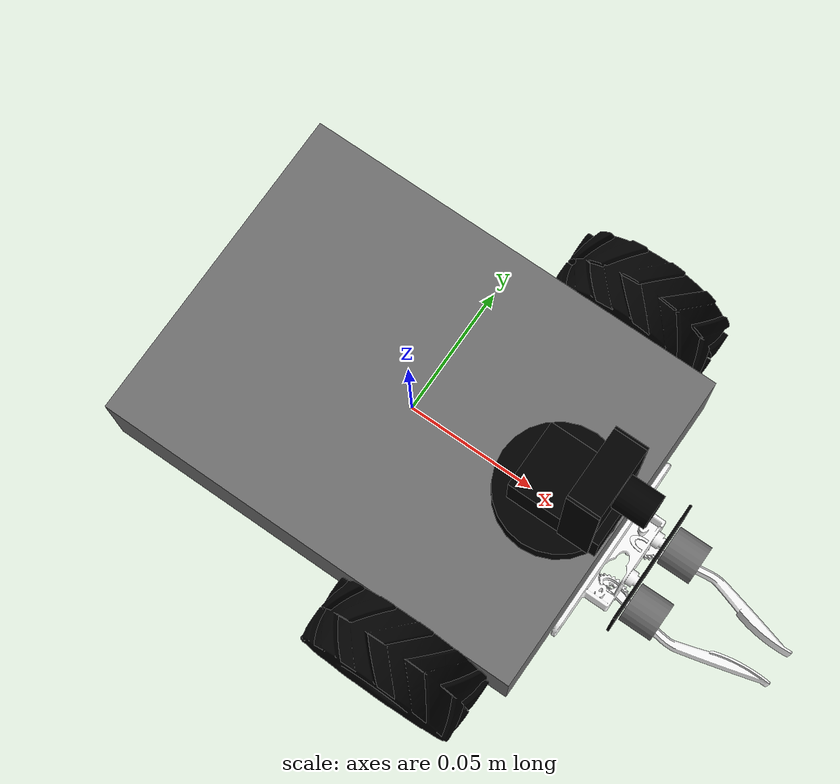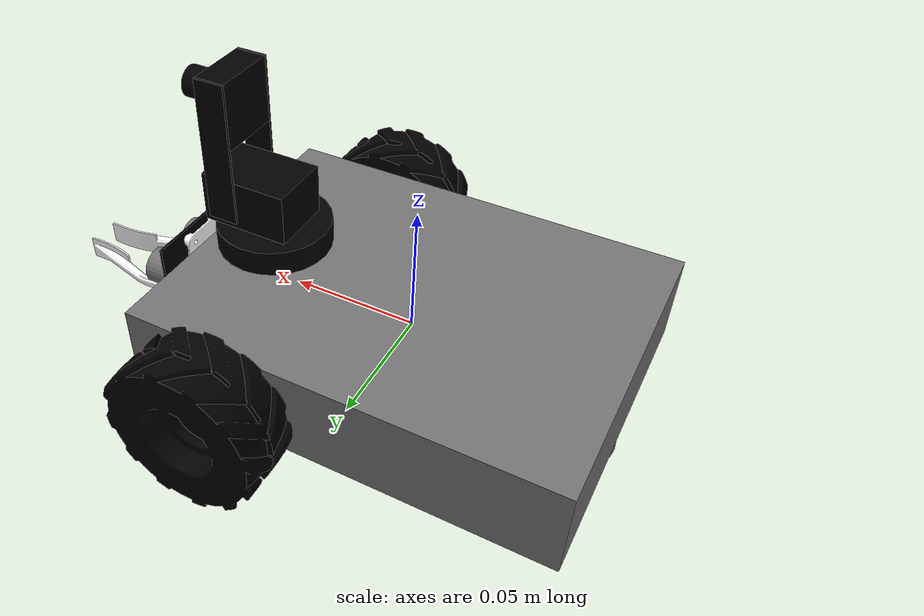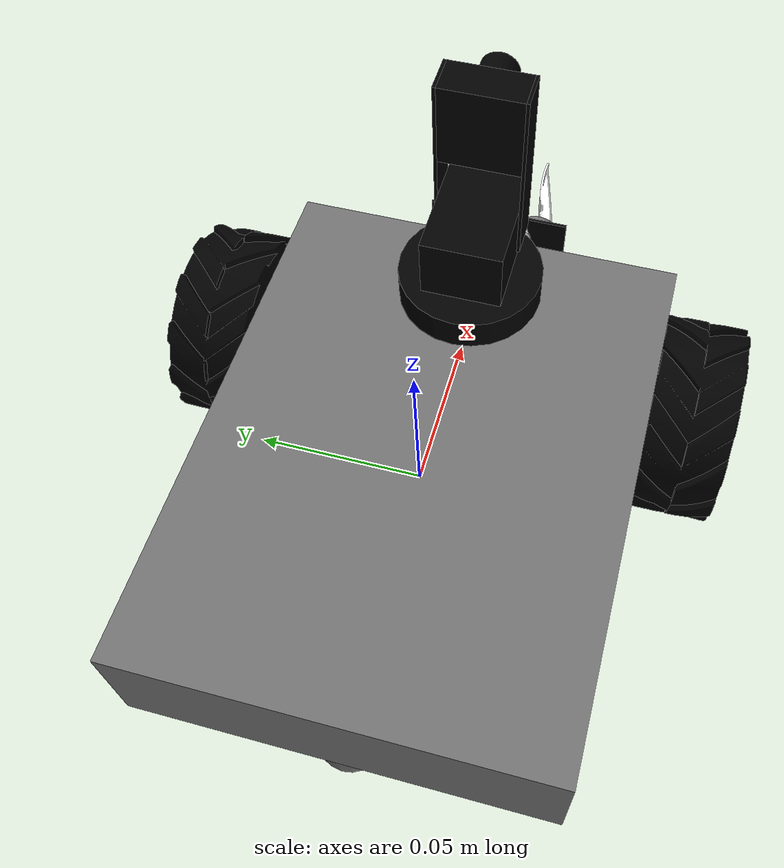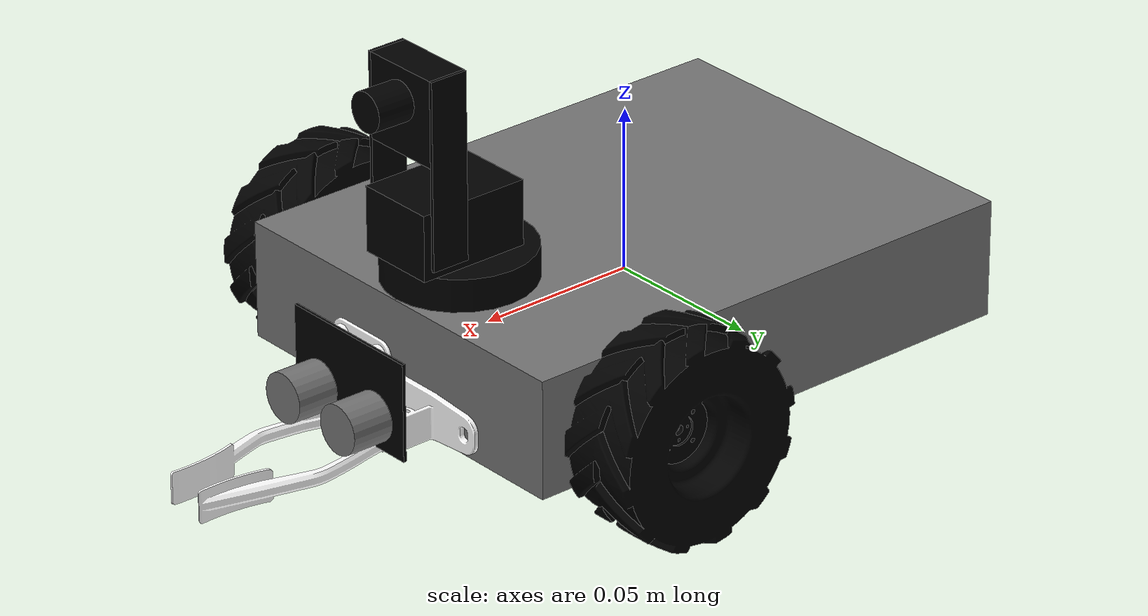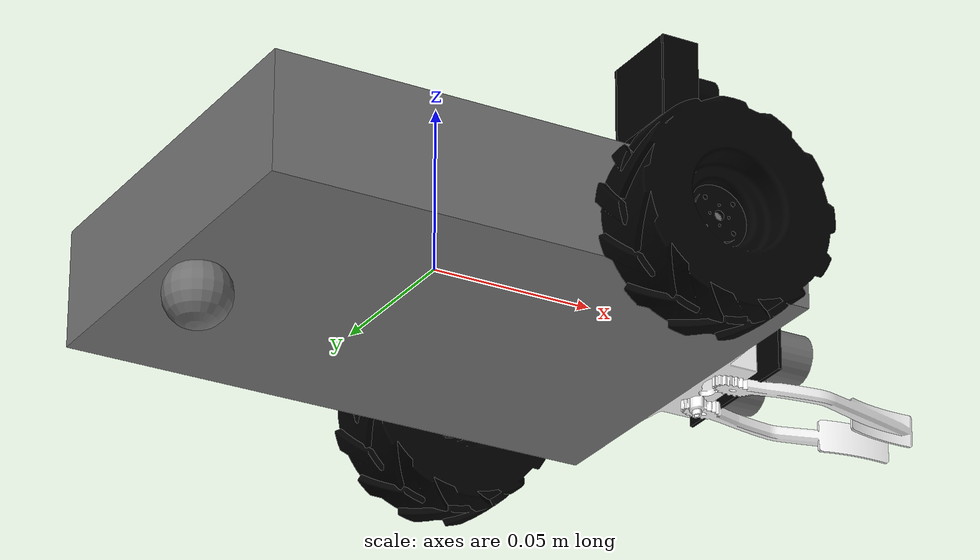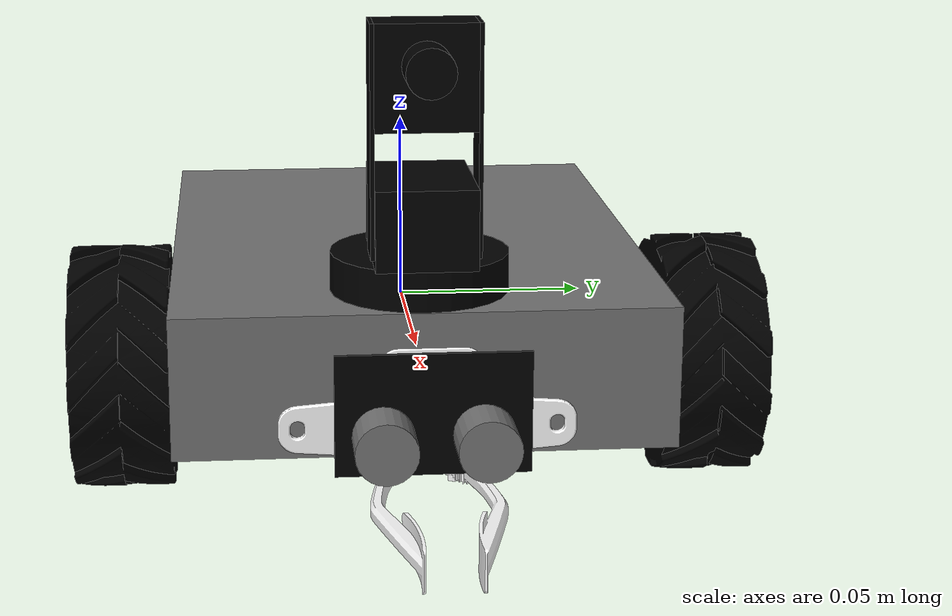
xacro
<?xml version='1.0'?>
<robot name="mark" xmlns:xacro="http://ros.org/wiki/xacro">
  <!-- Parameters -->
  <xacro:arg name="ultrasonic_sensor_enabled" default="true" />
  <xacro:arg name="gripper_enabled" default="true" />

  <!-- Includes -->
  <xacro:include filename="$(find mark_description)/urdf/inertial.urdf.xacro" />
  <xacro:include filename="$(find mark_description)/urdf/materials.urdf.xacro" />
  <xacro:include filename="$(find mark_description)/urdf/base.urdf.xacro" />
  <xacro:include filename="$(find mark_description)/urdf/wheel.urdf.xacro" />
  <xacro:include filename="$(find mark_description)/urdf/camera.urdf.xacro" />
  <xacro:include filename="$(find mark_description)/urdf/ultrasonic.urdf.xacro" />
  <xacro:include filename="$(find mark_description)/urdf/gripper.urdf.xacro" />

  <!-- Base/chassis -->
  <xacro:mark_base></xacro:mark_base>

  <!-- Wheels -->
  <xacro:mark_wheel wheel_prefix="right">
    <origin xyz="0.045 0.075 -0.005" rpy="0 0 0" />
  </xacro:mark_wheel>
  <xacro:mark_wheel wheel_prefix="left">
    <origin xyz="0.045 -0.075 -0.005" rpy="0 0 0" />
  </xacro:mark_wheel>

  <!-- Camera -->
  <xacro:mark_camera>
    <origin xyz="0.06 0.0 0.023" rpy="0 0 0" />
  </xacro:mark_camera>

  <!-- Ultrasonic sensor (if requied) -->
  <xacro:if value="$(arg ultrasonic_sensor_enabled)">
    <!-- If the gripper is also enabled then place the ultrasonic sensor on the base of the gripper -->
    <xacro:if value="$(arg gripper_enabled)">
      <xacro:mark_ultrasonic_sensor parent="gripper_base_link">
        <origin xyz="0.069 0.0 0.016" rpy="0 0 0" />
      </xacro:mark_ultrasonic_sensor>
    </xacro:if>
    <!-- If the gripper is not enabled then place the ultrasonic sensor on the base of the robot -->
    <xacro:unless value="$(arg gripper_enabled)">
      <xacro:mark_ultrasonic_sensor parent="base_link">
        <origin xyz="0.084 0.0 -0.003" rpy="0 0 0" />
      </xacro:mark_ultrasonic_sensor>
    </xacro:unless>
  </xacro:if>

  <!-- Gripper (if required) -->
  <xacro:if value="$(arg gripper_enabled)">
    <xacro:mark_gripper>
      <origin xyz="0.03 0.0 -0.018" rpy="0 0 0" />
    </xacro:mark_gripper>
  </xacro:if>
</robot>

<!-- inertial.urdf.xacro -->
<robot xmlns:xacro="http://ros.org/wiki/xacro" name="mark_inertial">
  <!-- All formulas computed from: https://en.wikipedia.org/wiki/List_of_moments_of_inertia#List_of_3D_inertia_tensors -->
  <xacro:macro name="cylinder_inertia" params="m r h">
    <inertia  ixx="${m*(3*r*r+h*h)/12}" ixy = "0" ixz = "0" iyy="${m*(3*r*r+h*h)/12}" iyz = "0" izz="${m*r*r/2}" />
  </xacro:macro>

  <xacro:macro name="box_inertia" params="m d w h">
    <inertia  ixx="${m*(h*h+d*d)/12}" ixy = "0" ixz = "0" iyy="${m*(w*w+d*d)/12}" iyz = "0" izz="${m*(w*w+h*h)/12}" />
  </xacro:macro>

  <xacro:macro name="sphere_inertia" params="m r">
    <inertia  ixx="${2*m*r*r/5}" ixy = "0" ixz = "0" iyy="${2*m*r*r/5}" iyz = "0" izz="${2*m*r*r/5}" />
  </xacro:macro>
</robot>

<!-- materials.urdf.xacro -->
<robot>
  <material name="grey">
    <color rgba="0.45 0.45 0.45 1.0"/>
  </material>

  <material name="black">
    <color rgba="0 0 0 1.0" />
  </material>

  <material name="blue">
    <color rgba="0 0 1.0 1.0" />
  </material>
</robot>

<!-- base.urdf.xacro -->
<robot xmlns:xacro="http://ros.org/wiki/xacro" name="mark_base">
  <xacro:property name="base_geom">
    <geometry>
      <box size="0.166 0.125 0.036" />
    </geometry>
  </xacro:property>

  <xacro:property name="caster_origin" value="-0.073 0 -0.025" />
  <xacro:property name="caster_geom">
    <geometry>
      <sphere radius="0.010" />
    </geometry>
  </xacro:property>

  <xacro:macro name="mark_base">
    <link name="world" />

    <!-- Base -->
    <link name="base_link">
      <visual>
        <xacro:insert_block name="base_geom" />
        <material name="grey" />
      </visual>
      <collision>
        <xacro:insert_block name="base_geom" />
      </collision>
    </link>

    <!-- Join the base to the "world" which will act as the unifying link of the whole robot
         This is needed for the robot to be imported properly in Unity -->
    <joint name="joint_world" type="fixed">
        <parent link="world" />
        <child link="base_link" />
        <origin xyz="0 0 0" rpy="0 0 0" />
    </joint>

    <!-- Caster (i.e. back support) -->
    <link name="caster_link">
      <visual>
        <xacro:insert_block name="caster_geom" />
        <material name="grey" />
      </visual>
      <collision>
        <xacro:insert_block name="caster_geom" />
      </collision>
    </link>

    <joint name="caster_to_base_joint" type="fixed">
      <parent link="base_link" />
      <child link="caster_link" />
      <origin xyz="${caster_origin}" />
    </joint>
  </xacro:macro>
</robot>

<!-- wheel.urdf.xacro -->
<robot xmlns:xacro="http://ros.org/wiki/xacro" name="mark_wheel">
  <!-- We use `*` for the joint_pose to specify it's a `block` property
       See: http://wiki.ros.org/xacro#Macros
  -->
  <xacro:macro name="mark_wheel" params="wheel_prefix *joint_pose">
    <link name="${wheel_prefix}_wheel_link">
      <visual>
        <geometry>
          <mesh filename="package://mark_description/meshes/wheel.dae" />
        </geometry>
      </visual>
      <collision>
        <!-- The cylinder for the collision needs to be rotated 90 degrees (in radians) -->
        <origin xyz="0 0 0" rpy="1.560795 0 0" />
        <geometry>
          <cylinder length="0.027" radius="0.031" />
        </geometry>
      </collision>
    </link>

    <joint name="joint_${wheel_prefix}_wheel" type="continuous">
      <parent link="base_link" />
      <child link="${wheel_prefix}_wheel_link" />
      <xacro:insert_block name="joint_pose" />
      <!-- Rotation on the y-axis -->
      <axis xyz="0 1 0" />
    </joint>
  </xacro:macro>
</robot>

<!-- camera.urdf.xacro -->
<robot xmlns:xacro="http://ros.org/wiki/xacro" name="mark_camera">
  <xacro:property name="camera_pan_support_geom">
    <geometry>
      <cylinder length="0.01" radius="0.0225" />
    </geometry>
  </xacro:property>

  <xacro:property name="camera_tilt_support_geom">
    <geometry>
      <box size="0.035 0.025 0.02" />
    </geometry>
  </xacro:property>
  <xacro:property name="camera_tilt_support_joint_pose">
    <origin xyz="0.005 0 0.015" rpy="0 0 0" />
  </xacro:property>

  <xacro:property name="camera_lateral_support_geom">
    <geometry>
      <box size="0.012 0.001 0.057" />
    </geometry>
  </xacro:property>
  <xacro:property name="camera_right_lateral_support_link_pose">
    <origin xyz="0 0 0.021" rpy="0 0 0" />
  </xacro:property>
  <xacro:property name="camera_left_lateral_support_link_pose">
    <origin xyz="-0.009 0 -0.0155" rpy="0 0 0" />
  </xacro:property>
  <xacro:property name="camera_right_lateral_support_joint_pose">
    <origin xyz="0.009 0.013 0" rpy="0 0 0" />
  </xacro:property>
  <xacro:property name="camera_left_lateral_support_joint_pose">
    <origin xyz="0.009 -0.013 0" rpy="0 0 0" />
  </xacro:property>

  <xacro:property name="camera_lens_support_geom">
    <geometry>
      <box size="0.012 0.025 0.026" />
    </geometry>
  </xacro:property>
  <xacro:property name="camera_lens_support_joint_pose">
    <origin xyz="0 -0.013 0.0365" rpy="0 0 0" />
  </xacro:property>

  <xacro:property name="camera_lens_geom">
    <geometry>
      <cylinder length="0.012" radius="0.006" />
    </geometry>
  </xacro:property>
  <xacro:property name="camera_lens_joint_pose">
    <!-- Rotate 90 degrees (in radians) -->
    <origin xyz="0.012 0 0.003" rpy="0 1.560795 0" />
  </xacro:property>

  <!-- Full camera macro -->
  <xacro:macro name="mark_camera" params="*main_camera_joint_pose">
    <!-- Support that provides panning -->
    <link name="camera_pan_support_link">
      <visual>
        <xacro:insert_block name="camera_pan_support_geom" />
        <material name="black" />
      </visual>
      <collision>
        <xacro:insert_block name="camera_pan_support_geom" />
      </collision>
    </link>

    <joint name="camera_pan_support_to_base_joint" type="revolute">
      <parent link="base_link" />
      <child link="camera_pan_support_link" />
      <xacro:insert_block name="main_camera_joint_pose" />
      <!-- Rotation on the z-axis (pan) -->
      <axis xyz="0 0 1" />
      <!-- -90 to 90 degrees -->
      <limit lower="-1.560795" upper="1.560795" effort="1.0" velocity="1.0" />
    </joint>

    <!-- Support that provides base for tilting joints -->
    <link name="camera_tilt_support_link">
      <visual>
        <xacro:insert_block name="camera_tilt_support_geom" />
        <material name="black" />
      </visual>
      <collision>
        <xacro:insert_block name="camera_tilt_support_geom" />
      </collision>
    </link>

    <joint name="camera_tilt_support_to_pan_support_joint" type="fixed">
      <parent link="camera_pan_support_link" />
      <child link="camera_tilt_support_link" />
      <xacro:insert_block name="camera_tilt_support_joint_pose" />
    </joint>

    <!-- Lateral support for lens that provide tilting (only the right will move) -->
    <link name="camera_right_lateral_support_link">
      <visual>
        <xacro:insert_block name="camera_right_lateral_support_link_pose" />
        <xacro:insert_block name="camera_lateral_support_geom" />
        <material name="black" />
      </visual>
      <collision>
        <xacro:insert_block name="camera_right_lateral_support_link_pose" />
        <xacro:insert_block name="camera_lateral_support_geom" />
      </collision>
    </link>

    <joint name="camera_right_lateral_support_to_tilt_support_joint" type="revolute">
      <parent link="camera_tilt_support_link" />
      <child link="camera_right_lateral_support_link" />
      <xacro:insert_block name="camera_right_lateral_support_joint_pose" />
      <!-- Rotation on the y-axis (tilt) -->
      <axis xyz="0 1 0" />
      <!-- -75 to 90 degrees -->
      <limit lower="-1.309" upper="1.560795" effort="1.0" velocity="1.0" />
    </joint>

    <!-- Lens support -->
    <link name="camera_lens_support_link">
      <visual>
        <xacro:insert_block name="camera_lens_support_geom" />
        <material name="black" />
      </visual>
      <collision>
        <xacro:insert_block name="camera_lens_support_geom" />
      </collision>
    </link>

    <joint name="camera_lens_support_to_lateral_support_joint" type="fixed">
      <parent link="camera_right_lateral_support_link" />
      <child link="camera_lens_support_link" />
      <xacro:insert_block name="camera_lens_support_joint_pose" />
    </joint>

    <!-- Left lateral support for lens that does not move on its own
         Movement is controlled by thr right lateral support
         We add this so that it matches the visual design of the robot -->
    <link name="camera_left_lateral_support_link">
      <visual>
        <xacro:insert_block name="camera_left_lateral_support_link_pose" />
        <xacro:insert_block name="camera_lateral_support_geom" />
        <material name="black" />
      </visual>
      <collision>
        <xacro:insert_block name="camera_left_lateral_support_link_pose" />
        <xacro:insert_block name="camera_lateral_support_geom" />
      </collision>
    </link>

    <!-- Join the lateral support with a fixed joint so that it moves with the whole
         camera lens when the right support moves -->
    <joint name="camera_left_lateral_support_to_lens_support_joint" type="fixed">
      <parent link="camera_lens_support_link" />
      <child link="camera_left_lateral_support_link" />
      <xacro:insert_block name="camera_left_lateral_support_joint_pose" />
    </joint>

    <!-- Camera lens -->
    <link name="camera_lens_link">
      <visual>
        <xacro:insert_block name="camera_lens_geom" />
        <material name="black" />
      </visual>
      <collision>
        <xacro:insert_block name="camera_lens_geom" />
      </collision>
    </link>

    <joint name="camera_lens_to_lens_support_joint" type="fixed">
      <parent link="camera_lens_support_link" />
      <child link="camera_lens_link" />
      <xacro:insert_block name="camera_lens_joint_pose" />
    </joint>
  </xacro:macro>
</robot>

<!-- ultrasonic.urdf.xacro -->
<robot xmlns:xacro="http://ros.org/wiki/xacro" name="mark_ultrasonic">
  <xacro:property name="ultrasonic_sensor_base_geom">
    <geometry>
      <box size="0.001 0.047 0.03" />
    </geometry>
  </xacro:property>
  <xacro:property name="ultrasonic_sensor_base_inertia">
    <inertial>
      <mass value="0.005" />
      <xacro:box_inertia m="0.005" d="0.001" w="0.045" h="0.023" />
    </inertial>
  </xacro:property>

  <xacro:property name="ultrasonic_sensor_geom">
    <geometry>
      <cylinder length="0.013" radius="0.0075" />
    </geometry>
  </xacro:property>
  <xacro:property name="ultrasonic_sensor_right_joint_pose">
    <!-- Rotate 90 degrees (in radians) -->
    <origin xyz="0.0076 0.012 -0.005" rpy="0 1.560795 0" />
  </xacro:property>
  <xacro:property name="ultrasonic_sensor_left_joint_pose">
    <!-- Rotate 90 degrees (in radians) -->
    <origin xyz="0.0076 -0.012 -0.005" rpy="0 1.560795 0" />
  </xacro:property>
  <xacro:property name="ultrasonic_sensor_inertia">
    <inertial>
      <mass value="0.005" />
      <xacro:cylinder_inertia m="0.005" r="0.0075" h="0.013" />
    </inertial>
  </xacro:property>

  <!-- Macro for lateral support for holding the lens support -->
  <xacro:macro name="ultrasonic_sensor" params="prefix *joint_pose">
    <link name="ultrasonic_sensor_${prefix}_link">
      <visual>
        <xacro:insert_block name="ultrasonic_sensor_geom" />
        <material name="grey" />
      </visual>
      <collision>
        <xacro:insert_block name="ultrasonic_sensor_geom" />
      </collision>
      <xacro:insert_block name="ultrasonic_sensor_inertia" />
    </link>

    <joint name="ultrasonic_sensor_${prefix}_to_sensor_base_joint" type="fixed">
      <parent link="ultrasonic_sensor_base_link" />
      <child link="ultrasonic_sensor_${prefix}_link" />
      <xacro:insert_block name="joint_pose" />
    </joint>
  </xacro:macro>

  <!-- Full ultrasonic sensor macro-->
  <xacro:macro name="mark_ultrasonic_sensor" params="parent *ultrasonic_sensor_base_joint_pose">
    <link name="ultrasonic_sensor_base_link">
      <visual>
        <xacro:insert_block name="ultrasonic_sensor_base_geom" />
        <material name="black" />
      </visual>
      <collision>
        <xacro:insert_block name="ultrasonic_sensor_base_geom" />
      </collision>
      <xacro:insert_block name="ultrasonic_sensor_base_inertia" />
    </link>

    <joint name="ultrasonic_sensor_base_to_parent_link" type="fixed">
      <parent link="${parent}" />
      <child link="ultrasonic_sensor_base_link" />
      <xacro:insert_block name="ultrasonic_sensor_base_joint_pose" />
    </joint>

    <!-- Two ultrasonic sensors -->
    <xacro:ultrasonic_sensor prefix="right">
      <xacro:insert_block name="ultrasonic_sensor_right_joint_pose" />
    </xacro:ultrasonic_sensor>
    <xacro:ultrasonic_sensor prefix="left">
      <xacro:insert_block name="ultrasonic_sensor_left_joint_pose" />
    </xacro:ultrasonic_sensor>

    <!-- TODO:
         - Gazebo: ultrasonic sensors
    -->
  </xacro:macro>
</robot>

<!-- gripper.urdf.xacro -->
<robot xmlns:xacro="http://ros.org/wiki/xacro" name="mark_gripper">
  <xacro:property name="gripper_base_geom">
    <geometry>
      <mesh filename="package://mark_description/meshes/gripper_base.dae" />
    </geometry>
  </xacro:property>
  <xacro:property name="gripper_base_collision">
    <geometry>
      <box size="0.015 0.073 0.035" />
    </geometry>
  </xacro:property>
  <xacro:property name="gripper_base_inertia">
    <inertial>
      <mass value="0.001" />
      <xacro:box_inertia m="0.001" d="0.015" w="0.073" h="0.035" />
    </inertial>
  </xacro:property>

  <xacro:property name="gripper_arm_collision">
    <geometry>
      <box size="0.07 0.01 0.01" />
    </geometry>
  </xacro:property>
  <xacro:property name="gripper_arm_a_link_pose">
    <origin xyz="0.015 0 0" rpy="0 0 0" />
  </xacro:property>
  <xacro:property name="gripper_arm_b_link_pose">
    <origin xyz="0.031 0 0" rpy="0 0 0" />
  </xacro:property>
  <xacro:property name="gripper_arm_a_joint_pose">
    <origin xyz="0.06 -0.01 0" rpy="0 0 0" />
  </xacro:property>
  <xacro:property name="gripper_arm_b_joint_pose">
    <origin xyz="0.06 0.01 0" rpy="0 0 0" />
  </xacro:property>
  <xacro:property name="gripper_arm_inertia">
    <inertial>
      <mass value="0.001" />
      <xacro:box_inertia m="0.001" d="0.07" w="0.01" h="0.01" />
    </inertial>
  </xacro:property>

  <!-- Macro for gripper arms -->
  <xacro:macro name="gripper_arm" params="prefix mimic_joint:='none' *link_pose *joint_pose">
    <link name="gripper_arm_${prefix}_link">
      <visual>
        <xacro:insert_block name="link_pose" />
        <geometry>
          <mesh filename="package://mark_description/meshes/gripper_arm_${prefix}.dae" />
        </geometry>
      </visual>
      <collision>
        <xacro:insert_block name="link_pose" />
        <xacro:insert_block name="gripper_arm_collision" />
      </collision>
      <xacro:insert_block name="gripper_arm_inertia" />
    </link>

    <joint name="gripper_arm_${prefix}_to_gripper_base_joint" type="revolute">
      <parent link="gripper_base_link" />
      <child link="gripper_arm_${prefix}_link" />
      <xacro:insert_block name="joint_pose" />
      <!-- Rotation on the z-axis -->
      <axis xyz="0 0 1" />
      <!-- -90 to ~5 degrees (radians) so that the two arms can meet -->
      <limit lower="-1.560795" upper="0.09" effort="1.0" velocity="1.0" />
      <xacro:if value="${mimic_joint != 'none'}" >
        <!-- We use a multiplier of -1 to make the joints move opposite of each other
             This allows both arms to open and close correctly
        -->
        <mimic joint="${mimic_joint}" multiplier="-1.0"/>
      </xacro:if>
    </joint>
  </xacro:macro>

  <!-- Full gripper macro-->
  <xacro:macro name="mark_gripper" params="*gripper_base_joint_pose">
    <link name="gripper_base_link">
      <visual>
        <xacro:insert_block name="gripper_base_geom" />
      </visual>
      <collision>
        <xacro:insert_block name="gripper_base_collision" />
      </collision>
      <xacro:insert_block name="gripper_base_inertia" />
    </link>

    <joint name="gripper_base_to_robot_base_link" type="fixed">
      <parent link="base_link" />
      <child link="gripper_base_link" />
      <xacro:insert_block name="gripper_base_joint_pose" />
    </joint>

    <!-- Two gripper arms -->
    <xacro:gripper_arm prefix="a">
      <xacro:insert_block name="gripper_arm_a_link_pose" />
      <xacro:insert_block name="gripper_arm_a_joint_pose" />
    </xacro:gripper_arm>
    <xacro:gripper_arm prefix="b" mimic_joint="gripper_arm_a_to_gripper_base_joint">
      <xacro:insert_block name="gripper_arm_b_link_pose" />
      <xacro:insert_block name="gripper_arm_b_joint_pose" />
    </xacro:gripper_arm>

    <!-- TODO:
         - Gazebo: controller for gripper arm servo
    -->
  </xacro:macro>
</robot>
